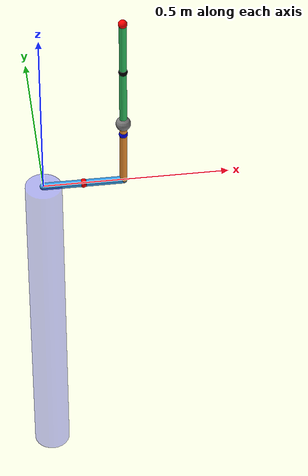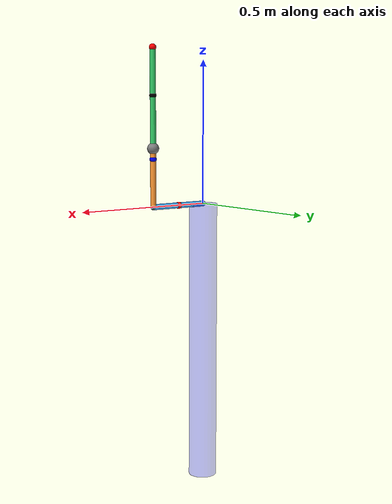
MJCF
<mujoco model="rotary_double_pendulum">
    <compiler angle="radian" coordinate="local" />
    <option timestep="0.004" gravity="0 0 -9.81" integrator="RK4" />

    <default>
        <joint limited="true" damping="0.0024" />
        <geom type="capsule" friction="1 0.1 0.1" size="0.01" rgba="0.2 0.6 0.8 1" />
    </default>

    <worldbody>
        <geom name="floor" pos="0 0 -3.0" rgba="0.8 0.9 0.8 1" size="40 40 40" type="plane" />

        <!-- Base -->
        <body name="base" pos="0 0 0">
            <site name="z_axis_marker" pos="0 0 -0.5" size="0.05 0.5" rgba="0 0 1 0.3"
                type="cylinder" />

            <!-- Rotary arm -->
            <body name="rotary_arm" pos="0 0 0">
                <joint name="rotary_motor" type="hinge" axis="0 0 1" limited="false" />
                <!-- From origin to tip (along X axis) -->
                <geom fromto="0 0 0 0.2159 0 0" size="0.01" rgba="0.2 0.6 0.9 1" mass="0.2570" />
                <site name="com_rotary_arm" pos="0.10795 0 0" size="0.012" rgba="1 0 0 1" />

                <!-- Link 1 (short pendulum) -->
                <body name="link1" pos="0.2159 0 0">
                    <joint name="hinge1" type="hinge" axis="1 0 0" limited="false" />
                    <!-- From joint upward (along Z) -->
                    <geom fromto="0 0 0 0 0 0.2" size="0.01" rgba="1 0.6 0.2 1" mass="0.097" />
                    <site name="com_link1" pos="0 0 0.1635" size="0.012" rgba="0 0 1 1" />
                    <!-- 在link1末端添加重物 -->
                    <geom name="weight1" type="sphere" pos="0 0 0.2" size="0.02" mass="0.1410"
                        rgba="0.5 0.5 0.5 1" />

                    <!-- Link 2 (medium pendulum) -->
                    <body name="link2" pos="0 0 0.2">
                        <joint name="hinge2" type="hinge" axis="1 0 0" limited="true"
                            range="-0.5236 0.5236" />

                        <!-- From joint upward -->
                        <geom fromto="0 0 0 0 0 0.3365" size="0.01" rgba="0.2 0.8 0.4 1"
                            mass="0.127" />
                        <site name="com_link2" pos="0 0 0.1778" size="0.012" rgba="0 0 0 1" />
                        <!-- 在link2末端添加标志 -->
                        <site name="flag" pos="0 0 0.3365" size="0.012" rgba="1 0 0 1"
                            type="sphere" />
                    </body>
                </body>
            </body>
        </body>
    </worldbody>

    <actuator>
        <!-- Rotary base actuator -->
        <motor name="rotary_motor_act" joint="rotary_motor" ctrlrange="-1 1" gear="20" />
    </actuator>
</mujoco>
